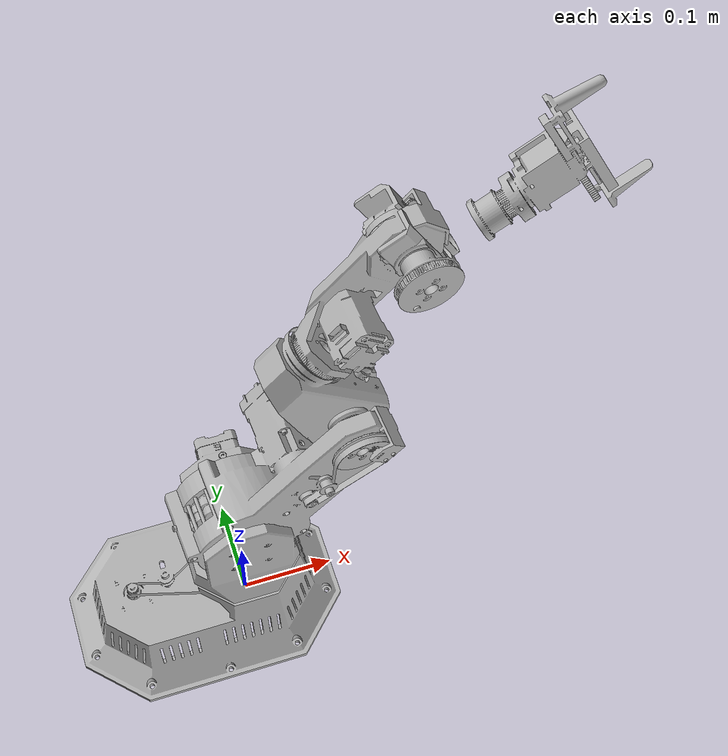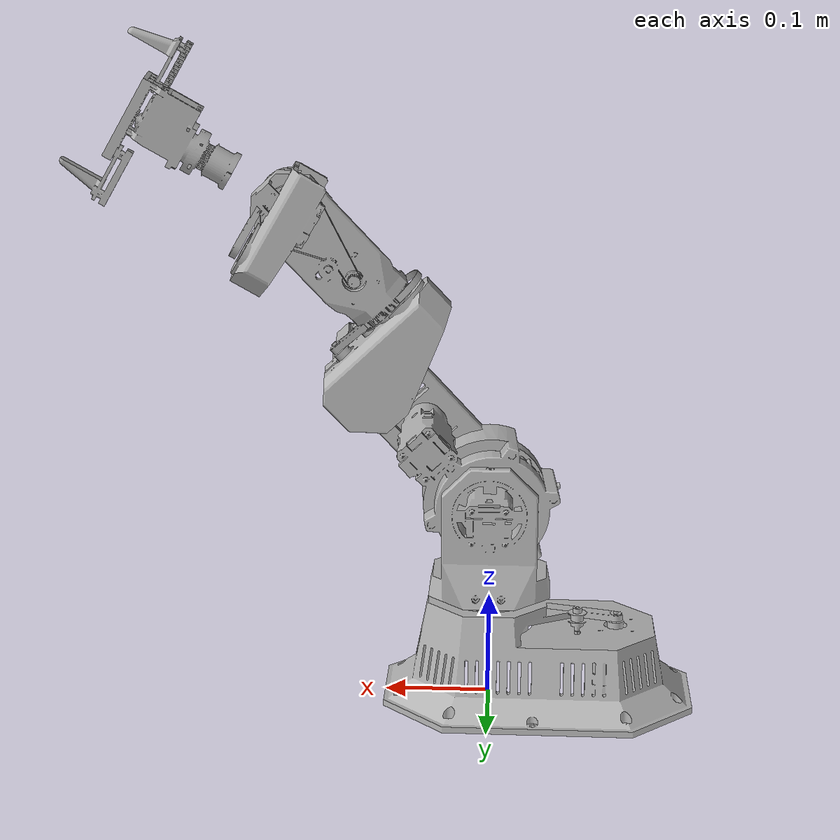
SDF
<?xml version="1.0"?>
<!-- DRAFT generated by tools/robot/derive.py; derived mechanically from robot/arm.urdf's
     numbers (same links, joints, limits, inertials, meshes). robot/arm.sdf is canonical. -->
<sdf version="1.12">
  <model name="arm">
    <link name="base_link">
      <pose>0 0 0 0 0 0</pose>
      <inertial>
        <pose>-0.032609 -0.000038 0.050662 0 0 0</pose>
        <mass>1.163143</mass>
        <inertia>
          <ixx>3.015337e-03</ixx><ixy>5.748429e-06</ixy><ixz>-2.228810e-04</ixz>
          <iyy>4.841445e-03</iyy><iyz>2.272553e-06</iyz><izz>5.296522e-03</izz>
        </inertia>
      </inertial>
      <visual name="base_link_visual">
        <geometry>
          <mesh>
            <uri>meshes/base_link.stl</uri>
            <scale>0.001 0.001 0.001</scale>
          </mesh>
        </geometry>
      </visual>
      <collision name="base_link_collision">
        <geometry>
          <mesh>
            <uri>meshes/base_link.stl</uri>
            <scale>0.001 0.001 0.001</scale>
          </mesh>
        </geometry>
      </collision>
    </link>
    <link name="shoulder_link">
      <pose relative_to="base_yaw">0 0 0 0 0 0</pose>
      <inertial>
        <pose>-0.00075 0.014225 -0.022097 0 0 0</pose>
        <mass>1.370307</mass>
        <inertia>
          <ixx>3.791606e-03</ixx><ixy>5.872290e-05</ixy><ixz>2.273055e-05</ixz>
          <iyy>2.836825e-03</iyy><iyz>-4.403984e-04</iyz><izz>2.065815e-03</izz>
        </inertia>
      </inertial>
      <visual name="shoulder_link_visual">
        <geometry>
          <mesh>
            <uri>meshes/shoulder_link.stl</uri>
            <scale>0.001 0.001 0.001</scale>
          </mesh>
        </geometry>
      </visual>
      <collision name="shoulder_link_collision">
        <geometry>
          <mesh>
            <uri>meshes/shoulder_link.stl</uri>
            <scale>0.001 0.001 0.001</scale>
          </mesh>
        </geometry>
      </collision>
    </link>
    <link name="upper_arm_link">
      <pose relative_to="shoulder_pitch">0 0 0 0 0 0</pose>
      <inertial>
        <pose>0.058948 0.000069 0.039363 0 0 0</pose>
        <mass>1.294643</mass>
        <inertia>
          <ixx>1.601839e-03</ixx><ixy>-2.548876e-06</ixy><ixz>3.665239e-04</ixz>
          <iyy>6.145592e-03</iyy><iyz>-2.969747e-06</iyz><izz>6.604746e-03</izz>
        </inertia>
      </inertial>
      <visual name="upper_arm_link_visual">
        <geometry>
          <mesh>
            <uri>meshes/upper_arm_link.stl</uri>
            <scale>0.001 0.001 0.001</scale>
          </mesh>
        </geometry>
      </visual>
      <collision name="upper_arm_link_collision">
        <geometry>
          <mesh>
            <uri>meshes/upper_arm_link.stl</uri>
            <scale>0.001 0.001 0.001</scale>
          </mesh>
        </geometry>
      </collision>
    </link>
    <link name="elbow_link">
      <pose relative_to="elbow_pitch">0 0 0 0 0 0</pose>
      <inertial>
        <pose>0.002227 -0.01194 0.016945 0 0 0</pose>
        <mass>0.807236</mass>
        <inertia>
          <ixx>1.133437e-03</ixx><ixy>1.376755e-04</ixy><ixz>-1.511048e-05</ixz>
          <iyy>6.678987e-04</iyy><iyz>3.691204e-05</iyz><izz>1.072495e-03</izz>
        </inertia>
      </inertial>
      <visual name="elbow_link_visual">
        <geometry>
          <mesh>
            <uri>meshes/elbow_link.stl</uri>
            <scale>0.001 0.001 0.001</scale>
          </mesh>
        </geometry>
      </visual>
      <collision name="elbow_link_collision">
        <geometry>
          <mesh>
            <uri>meshes/elbow_link.stl</uri>
            <scale>0.001 0.001 0.001</scale>
          </mesh>
        </geometry>
      </collision>
    </link>
  <link name="forearm_link">
      <pose relative_to="forearm_roll">0 0 0 0 0 0</pose>
      <inertial>
        <pose>0.005138 -0.000013 0.112869 0 0 0</pose>
        <mass>0.635166</mass>
        <inertia>
          <ixx>1.440980e-03</ixx><ixy>2.446769e-07</ixy><ixz>1.299114e-04</ixz>
          <iyy>1.418393e-03</iyy><iyz>-3.164737e-08</iyz><izz>3.582283e-04</izz>
        </inertia>
      </inertial>
      <visual name="forearm_link_visual">
        <geometry>
          <mesh>
            <uri>meshes/forearm_link.stl</uri>
            <scale>0.001 0.001 0.001</scale>
          </mesh>
        </geometry>
      </visual>
      <collision name="forearm_link_collision">
        <geometry>
          <mesh>
            <uri>meshes/forearm_link.stl</uri>
            <scale>0.001 0.001 0.001</scale>
          </mesh>
        </geometry>
      </collision>
    </link>
    <link name="wrist_pitch_link">
      <pose relative_to="wrist_pitch">0 0 0 0 0 0</pose>
      <inertial>
        <pose>0.04509 0.000072 -0.015393 0 0 0</pose>
        <mass>0.41432</mass>
        <inertia>
          <ixx>1.944365e-04</ixx><ixy>-5.986097e-07</ixy><ixz>2.001746e-05</ixz>
          <iyy>6.590431e-04</iyy><iyz>4.273051e-08</iyz><izz>6.908884e-04</izz>
        </inertia>
      </inertial>
      <visual name="wrist_pitch_link_visual">
        <geometry>
          <mesh>
            <uri>meshes/wrist_pitch_link.stl</uri>
            <scale>0.001 0.001 0.001</scale>
          </mesh>
        </geometry>
      </visual>
      <collision name="wrist_pitch_link_collision">
        <geometry>
          <mesh>
            <uri>meshes/wrist_pitch_link.stl</uri>
            <scale>0.001 0.001 0.001</scale>
          </mesh>
        </geometry>
      </collision>
    </link>
    <link name="wrist_roll_link">
      <pose relative_to="wrist_roll">0 0 0 0 0 0</pose>
      <inertial>
        <pose>0.000012 -0.008443 0.053776 0 0 0</pose>
        <mass>0.16664</mass>
        <inertia>
          <ixx>1.259933e-04</ixx><ixy>-1.888508e-09</ixy><ixz>3.634024e-08</ixz>
          <iyy>1.739991e-04</iyy><iyz>1.495119e-05</iyz><izz>1.150603e-04</izz>
        </inertia>
      </inertial>
      <visual name="wrist_roll_link_visual">
        <geometry>
          <mesh>
            <uri>meshes/wrist_roll_link.stl</uri>
            <scale>0.001 0.001 0.001</scale>
          </mesh>
        </geometry>
      </visual>
      <collision name="wrist_roll_link_collision">
        <geometry>
          <mesh>
            <uri>meshes/wrist_roll_link.stl</uri>
            <scale>0.001 0.001 0.001</scale>
          </mesh>
        </geometry>
      </collision>
    </link>
    <link name="jaw_a_link">
      <pose relative_to="jaw_a">0 0 0 0 0 0</pose>
      <inertial>
        <pose>0.021644 0 -0.001923 0 0 0</pose>
        <mass>0.058661</mass>
        <inertia>
          <ixx>7.006318e-06</ixx><ixy>2.243133e-13</ixy><ixz>3.571123e-06</ixz>
          <iyy>6.252591e-05</iyy><iyz>-3.357013e-13</iyz><izz>6.325509e-05</izz>
        </inertia>
      </inertial>
      <visual name="jaw_a_link_visual">
        <geometry>
          <mesh>
            <uri>meshes/jaw_a_link.stl</uri>
            <scale>0.001 0.001 0.001</scale>
          </mesh>
        </geometry>
      </visual>
      <collision name="jaw_a_link_collision">
        <geometry>
          <mesh>
            <uri>meshes/jaw_a_link.stl</uri>
            <scale>0.001 0.001 0.001</scale>
          </mesh>
        </geometry>
      </collision>
    </link>
    <link name="jaw_b_link">
      <pose relative_to="jaw_b">0 0 0 0 0 0</pose>
      <inertial>
        <pose>0.021643 0.000001 0.001924 0 0 0</pose>
        <mass>0.058661</mass>
        <inertia>
          <ixx>7.006321e-06</ixx><ixy>1.955510e-12</ixy><ixz>-3.571150e-06</ixz>
          <iyy>6.252591e-05</iyy><iyz>-7.337480e-14</iyz><izz>6.325509e-05</izz>
        </inertia>
      </inertial>
      <visual name="jaw_b_link_visual">
        <geometry>
          <mesh>
            <uri>meshes/jaw_b_link.stl</uri>
            <scale>0.001 0.001 0.001</scale>
          </mesh>
        </geometry>
      </visual>
      <collision name="jaw_b_link_collision">
        <geometry>
          <mesh>
            <uri>meshes/jaw_b_link.stl</uri>
            <scale>0.001 0.001 0.001</scale>
          </mesh>
        </geometry>
      </collision>
    </link>
    <link name="tool0">
      <pose relative_to="tool0_joint">0 0 0 0 0 0</pose>
    </link>
    <joint name="base_yaw" type="revolute">
      <pose relative_to="base_link">0 0 0.19701 0 0 0</pose>
      <parent>base_link</parent>
      <child>shoulder_link</child>
      <axis>
        <xyz expressed_in="base_yaw">0 0 1</xyz>
        <limit>
          <lower>-3.054326</lower><upper>3.054326</upper>
          <effort>5</effort><velocity>1</velocity>
        </limit>
      </axis>
    </joint>
    <joint name="shoulder_pitch" type="revolute">
      <pose relative_to="shoulder_link">0.002924 -0.0424 0 -1.570796 -0.830504 0.064484</pose>
      <parent>shoulder_link</parent>
      <child>upper_arm_link</child>
      <axis>
        <xyz expressed_in="shoulder_pitch">0 0 1</xyz>
        <limit>
          <lower>-2.094395</lower><upper>1.169371</upper>
          <effort>5</effort><velocity>1</velocity>
        </limit>
      </axis>
    </joint>
    <joint name="elbow_pitch" type="revolute">
      <pose relative_to="upper_arm_link">0.170004 0 0.049271 0 0 0.010227</pose>
      <parent>upper_arm_link</parent>
      <child>elbow_link</child>
      <axis>
        <xyz expressed_in="elbow_pitch">0 0 1</xyz>
        <limit>
          <lower>-0.820305</lower><upper>1.570796</upper>
          <effort>5</effort><velocity>1</velocity>
        </limit>
      </axis>
    </joint>
    <joint name="forearm_roll" type="revolute">
      <pose relative_to="elbow_link">0.000001 -0.060926 0.025 3.141593 -1.570795 0</pose>
      <parent>elbow_link</parent>
      <child>forearm_link</child>
      <axis>
        <xyz expressed_in="forearm_roll">0 0 1</xyz>
        <limit>
          <lower>-2.897247</lower><upper>2.897247</upper>
          <effort>5</effort><velocity>1</velocity>
        </limit>
      </axis>
    </joint>
  <joint name="wrist_pitch" type="revolute">
      <pose relative_to="forearm_link">0.016998 0 0.17 -1.570799 -1.271722 -1.570793</pose>
      <parent>forearm_link</parent>
      <child>wrist_pitch_link</child>
      <axis>
        <xyz expressed_in="wrist_pitch">0 0 1</xyz>
        <limit>
          <lower>-1.832596</lower><upper>1.22173</upper>
          <effort>5</effort><velocity>1</velocity>
        </limit>
      </axis>
    </joint>
    <joint name="wrist_roll" type="revolute">
      <pose relative_to="wrist_pitch_link">0.089643 0.000005 -0.016998 -1.570799 -0.055534 -1.570796</pose>
      <parent>wrist_pitch_link</parent>
      <child>wrist_roll_link</child>
      <axis>
        <xyz expressed_in="wrist_roll">0 0 1</xyz>
        <limit>
          <lower>-3.141593</lower><upper>3.141593</upper>
          <effort>1</effort><velocity>2</velocity>
        </limit>
      </axis>
    </joint>
    <joint name="jaw_a" type="prismatic">
      <pose relative_to="wrist_roll_link">-0.053464 0 0.05495 0 -1.570796 0</pose>
      <parent>wrist_roll_link</parent>
      <child>jaw_a_link</child>
      <axis>
        <xyz expressed_in="jaw_a">0 0 1</xyz>
        <limit>
          <lower>-0.01</lower><upper>0.01</upper>
          <effort>20</effort><velocity>0.05</velocity>
        </limit>
      </axis>
    </joint>
    <joint name="jaw_b" type="prismatic">
      <pose relative_to="wrist_roll_link">0.053465 -0.000001 0.054951 0 -1.570796 0</pose>
      <parent>wrist_roll_link</parent>
      <child>jaw_b_link</child>
      <axis>
        <xyz expressed_in="jaw_b">0 0 1</xyz>
        <limit>
          <lower>-0.01</lower><upper>0.01</upper>
          <effort>20</effort><velocity>0.05</velocity>
        </limit>
        <mimic joint="jaw_a">
          <multiplier>-1</multiplier>
          <offset>0</offset>
        </mimic>
      </axis>
    </joint>
    <joint name="tool0_joint" type="fixed">
      <pose relative_to="wrist_roll_link">-0.000001 0 0.116951 0 0 0</pose>
      <parent>wrist_roll_link</parent>
      <child>tool0</child>
    </joint>
  </model>
</sdf>
